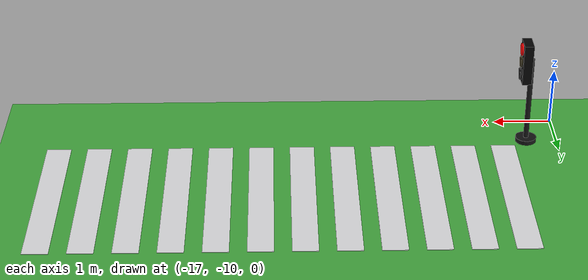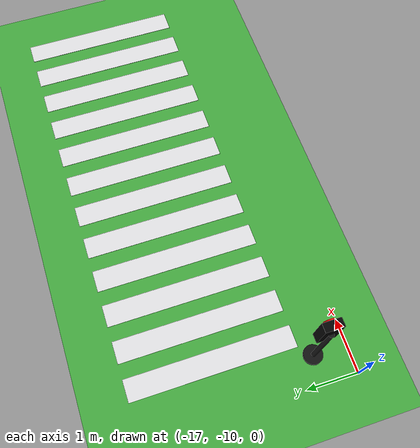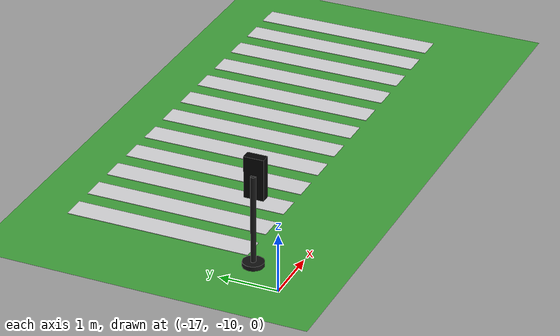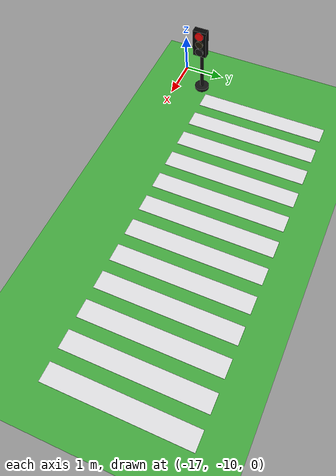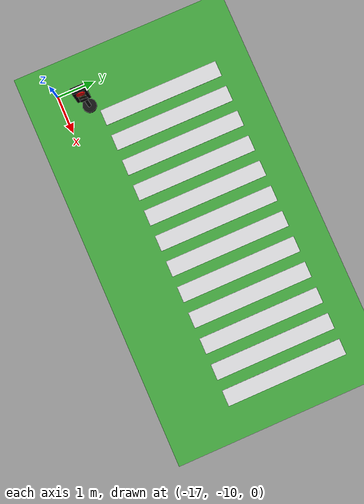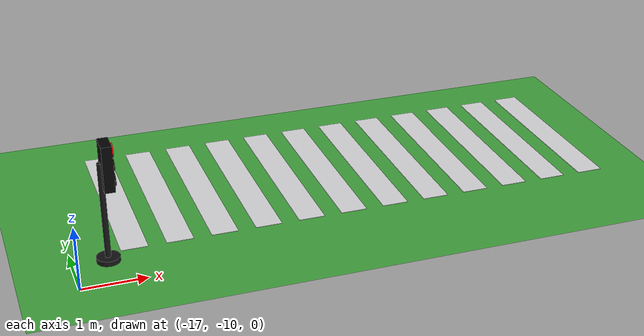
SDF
<sdf version="1.10">
 <world name="city_second">
  <model name="ground_plane">
   <static>true</static>
   <link name="link">
    <collision name="collision">
     <geometry><plane><normal>0 0 1</normal><size>300 300</size></plane></geometry>
    </collision>
    <visual name="visual">
     <geometry><plane><normal>0 0 1</normal><size>300 300</size></plane></geometry>
     <material>
      <ambient>0.280000001 0.689999998 0.25999999 1</ambient>
      <diffuse>0.280000001 0.689999998 0.25999999 1</diffuse>
      <specular>0.0299999993 0.0299999993 0.0299999993 1</specular>
     </material>
    </visual>
    <inertial>
     <mass>1</mass>
     <inertia><ixx>1</ixx><ixy>0</ixy><ixz>0</ixz><iyy>1</iyy><iyz>0</iyz><izz>1</izz></inertia>
    </inertial>
   </link>
  </model>
  <model name="crosswalk_h_1_1_south_7_4">
   <static>true</static>
   <pose>-12.188700000000003 -7.5394199999999998 0.017000000000000001 0 0 0</pose>
   <link name="stripe_1">
    <collision name="collision">
     <geometry><box><size>0.41999999999999998 3.2000000000000002 0.01</size></box></geometry>
    </collision>
    <visual name="visual">
     <geometry><box><size>0.41999999999999998 3.2000000000000002 0.01</size></box></geometry>
     <material>
      <ambient>0.920000017 0.920000017 0.930000007 1</ambient>
      <diffuse>0.920000017 0.920000017 0.930000007 1</diffuse>
      <specular>0.0299999993 0.0299999993 0.0299999993 1</specular>
     </material>
    </visual>
    <pose>-3.8500000000000001 0 0 0 0 0</pose>
    <inertial>
     <mass>1</mass>
     <inertia><ixx>1</ixx><ixy>0</ixy><ixz>0</ixz><iyy>1</iyy><iyz>0</iyz><izz>1</izz></inertia>
    </inertial>
   </link>
   <link name="stripe_2">
    <collision name="collision">
     <geometry><box><size>0.41999999999999998 3.2000000000000002 0.01</size></box></geometry>
    </collision>
    <visual name="visual">
     <geometry><box><size>0.41999999999999998 3.2000000000000002 0.01</size></box></geometry>
     <material>
      <ambient>0.920000017 0.920000017 0.930000007 1</ambient>
      <diffuse>0.920000017 0.920000017 0.930000007 1</diffuse>
      <specular>0.0299999993 0.0299999993 0.0299999993 1</specular>
     </material>
    </visual>
    <pose>-3.1499999999999986 0 0 0 0 0</pose>
    <inertial>
     <mass>1</mass>
     <inertia><ixx>1</ixx><ixy>0</ixy><ixz>0</ixz><iyy>1</iyy><iyz>0</iyz><izz>1</izz></inertia>
    </inertial>
   </link>
   <link name="stripe_3">
    <collision name="collision">
     <geometry><box><size>0.41999999999999998 3.2000000000000002 0.01</size></box></geometry>
    </collision>
    <visual name="visual">
     <geometry><box><size>0.41999999999999998 3.2000000000000002 0.01</size></box></geometry>
     <material>
      <ambient>0.920000017 0.920000017 0.930000007 1</ambient>
      <diffuse>0.920000017 0.920000017 0.930000007 1</diffuse>
      <specular>0.0299999993 0.0299999993 0.0299999993 1</specular>
     </material>
    </visual>
    <pose>-2.4499999999999975 0 0 0 0 0</pose>
    <inertial>
     <mass>1</mass>
     <inertia><ixx>1</ixx><ixy>0</ixy><ixz>0</ixz><iyy>1</iyy><iyz>0</iyz><izz>1</izz></inertia>
    </inertial>
   </link>
   <link name="stripe_4">
    <collision name="collision">
     <geometry><box><size>0.41999999999999998 3.2000000000000002 0.01</size></box></geometry>
    </collision>
    <visual name="visual">
     <geometry><box><size>0.41999999999999998 3.2000000000000002 0.01</size></box></geometry>
     <material>
      <ambient>0.920000017 0.920000017 0.930000007 1</ambient>
      <diffuse>0.920000017 0.920000017 0.930000007 1</diffuse>
      <specular>0.0299999993 0.0299999993 0.0299999993 1</specular>
     </material>
    </visual>
    <pose>-1.7499999999999982 0 0 0 0 0</pose>
    <inertial>
     <mass>1</mass>
     <inertia><ixx>1</ixx><ixy>0</ixy><ixz>0</ixz><iyy>1</iyy><iyz>0</iyz><izz>1</izz></inertia>
    </inertial>
   </link>
   <link name="stripe_5">
    <collision name="collision">
     <geometry><box><size>0.41999999999999998 3.2000000000000002 0.01</size></box></geometry>
    </collision>
    <visual name="visual">
     <geometry><box><size>0.41999999999999998 3.2000000000000002 0.01</size></box></geometry>
     <material>
      <ambient>0.920000017 0.920000017 0.930000007 1</ambient>
      <diffuse>0.920000017 0.920000017 0.930000007 1</diffuse>
      <specular>0.0299999993 0.0299999993 0.0299999993 1</specular>
     </material>
    </visual>
    <pose>-1.0499999999999989 0 0 0 0 0</pose>
    <inertial>
     <mass>1</mass>
     <inertia><ixx>1</ixx><ixy>0</ixy><ixz>0</ixz><iyy>1</iyy><iyz>0</iyz><izz>1</izz></inertia>
    </inertial>
   </link>
   <link name="stripe_6">
    <collision name="collision">
     <geometry><box><size>0.41999999999999998 3.2000000000000002 0.01</size></box></geometry>
    </collision>
    <visual name="visual">
     <geometry><box><size>0.41999999999999998 3.2000000000000002 0.01</size></box></geometry>
     <material>
      <ambient>0.920000017 0.920000017 0.930000007 1</ambient>
      <diffuse>0.920000017 0.920000017 0.930000007 1</diffuse>
      <specular>0.0299999993 0.0299999993 0.0299999993 1</specular>
     </material>
    </visual>
    <pose>-0.34999999999999787 0 0 0 0 0</pose>
    <inertial>
     <mass>1</mass>
     <inertia><ixx>1</ixx><ixy>0</ixy><ixz>0</ixz><iyy>1</iyy><iyz>0</iyz><izz>1</izz></inertia>
    </inertial>
   </link>
   <link name="stripe_7">
    <collision name="collision">
     <geometry><box><size>0.41999999999999998 3.2000000000000002 0.01</size></box></geometry>
    </collision>
    <visual name="visual">
     <geometry><box><size>0.41999999999999998 3.2000000000000002 0.01</size></box></geometry>
     <material>
      <ambient>0.920000017 0.920000017 0.930000007 1</ambient>
      <diffuse>0.920000017 0.920000017 0.930000007 1</diffuse>
      <specular>0.0299999993 0.0299999993 0.0299999993 1</specular>
     </material>
    </visual>
    <pose>0.35000000000000142 0 0 0 0 0</pose>
    <inertial>
     <mass>1</mass>
     <inertia><ixx>1</ixx><ixy>0</ixy><ixz>0</ixz><iyy>1</iyy><iyz>0</iyz><izz>1</izz></inertia>
    </inertial>
   </link>
   <link name="stripe_8">
    <collision name="collision">
     <geometry><box><size>0.41999999999999998 3.2000000000000002 0.01</size></box></geometry>
    </collision>
    <visual name="visual">
     <geometry><box><size>0.41999999999999998 3.2000000000000002 0.01</size></box></geometry>
     <material>
      <ambient>0.920000017 0.920000017 0.930000007 1</ambient>
      <diffuse>0.920000017 0.920000017 0.930000007 1</diffuse>
      <specular>0.0299999993 0.0299999993 0.0299999993 1</specular>
     </material>
    </visual>
    <pose>1.0500000000000025 0 0 0 0 0</pose>
    <inertial>
     <mass>1</mass>
     <inertia><ixx>1</ixx><ixy>0</ixy><ixz>0</ixz><iyy>1</iyy><iyz>0</iyz><izz>1</izz></inertia>
    </inertial>
   </link>
   <link name="stripe_9">
    <collision name="collision">
     <geometry><box><size>0.41999999999999998 3.2000000000000002 0.01</size></box></geometry>
    </collision>
    <visual name="visual">
     <geometry><box><size>0.41999999999999998 3.2000000000000002 0.01</size></box></geometry>
     <material>
      <ambient>0.920000017 0.920000017 0.930000007 1</ambient>
      <diffuse>0.920000017 0.920000017 0.930000007 1</diffuse>
      <specular>0.0299999993 0.0299999993 0.0299999993 1</specular>
     </material>
    </visual>
    <pose>1.7500000000000018 0 0 0 0 0</pose>
    <inertial>
     <mass>1</mass>
     <inertia><ixx>1</ixx><ixy>0</ixy><ixz>0</ixz><iyy>1</iyy><iyz>0</iyz><izz>1</izz></inertia>
    </inertial>
   </link>
   <link name="stripe_10">
    <collision name="collision">
     <geometry><box><size>0.41999999999999998 3.2000000000000002 0.01</size></box></geometry>
    </collision>
    <visual name="visual">
     <geometry><box><size>0.41999999999999998 3.2000000000000002 0.01</size></box></geometry>
     <material>
      <ambient>0.920000017 0.920000017 0.930000007 1</ambient>
      <diffuse>0.920000017 0.920000017 0.930000007 1</diffuse>
      <specular>0.0299999993 0.0299999993 0.0299999993 1</specular>
     </material>
    </visual>
    <pose>2.4500000000000011 0 0 0 0 0</pose>
    <inertial>
     <mass>1</mass>
     <inertia><ixx>1</ixx><ixy>0</ixy><ixz>0</ixz><iyy>1</iyy><iyz>0</iyz><izz>1</izz></inertia>
    </inertial>
   </link>
   <link name="stripe_11">
    <collision name="collision">
     <geometry><box><size>0.41999999999999998 3.2000000000000002 0.01</size></box></geometry>
    </collision>
    <visual name="visual">
     <geometry><box><size>0.41999999999999998 3.2000000000000002 0.01</size></box></geometry>
     <material>
      <ambient>0.920000017 0.920000017 0.930000007 1</ambient>
      <diffuse>0.920000017 0.920000017 0.930000007 1</diffuse>
      <specular>0.0299999993 0.0299999993 0.0299999993 1</specular>
     </material>
    </visual>
    <pose>3.1500000000000021 0 0 0 0 0</pose>
    <inertial>
     <mass>1</mass>
     <inertia><ixx>1</ixx><ixy>0</ixy><ixz>0</ixz><iyy>1</iyy><iyz>0</iyz><izz>1</izz></inertia>
    </inertial>
   </link>
   <link name="stripe_12">
    <collision name="collision">
     <geometry><box><size>0.41999999999999998 3.2000000000000002 0.01</size></box></geometry>
    </collision>
    <visual name="visual">
     <geometry><box><size>0.41999999999999998 3.2000000000000002 0.01</size></box></geometry>
     <material>
      <ambient>0.920000017 0.920000017 0.930000007 1</ambient>
      <diffuse>0.920000017 0.920000017 0.930000007 1</diffuse>
      <specular>0.0299999993 0.0299999993 0.0299999993 1</specular>
     </material>
    </visual>
    <pose>3.8500000000000014 0 0 0 0 0</pose>
    <inertial>
     <mass>1</mass>
     <inertia><ixx>1</ixx><ixy>0</ixy><ixz>0</ixz><iyy>1</iyy><iyz>0</iyz><izz>1</izz></inertia>
    </inertial>
   </link>
  </model>
  <model name="simple_traffic_light_red_east_1">
   <static>true</static>
   <pose>-16.46505069204456 -9.3365546066623484 -2.7755575615628914e-17 0 0 -1.5707999672671742</pose>
   <link name="base">
    <pose>0 0 0.040000000000000001 0 0 0</pose>
    <collision name="collision">
     <geometry>
      <cylinder><radius>0.17999999999999999</radius><length>0.080000000000000002</length></cylinder>
     </geometry>
    </collision>
    <visual name="visual">
     <geometry>
      <cylinder><radius>0.17999999999999999</radius><length>0.080000000000000002</length></cylinder>
     </geometry>
     <material>
      <ambient>0.0799999982 0.0799999982 0.0799999982 1</ambient>
      <diffuse>0.0799999982 0.0799999982 0.0799999982 1</diffuse>
      <specular>0.150000006 0.150000006 0.150000006 1</specular>
      <emissive>0 0 0 1</emissive>
     </material>
    </visual>
    <inertial>
     <mass>1</mass>
     <inertia><ixx>1</ixx><ixy>0</ixy><ixz>0</ixz><iyy>1</iyy><iyz>0</iyz><izz>1</izz></inertia>
    </inertial>
   </link>
   <link name="pole">
    <pose>2.1316282072803006e-14 -1.7763568394002505e-14 0.80000000000000004 0 0 -6.6613381477509392e-16</pose>
    <collision name="collision">
     <geometry>
      <cylinder><radius>0.044999999999999998</radius><length>1.6000000000000001</length></cylinder>
     </geometry>
    </collision>
    <visual name="visual">
     <geometry>
      <cylinder><radius>0.044999999999999998</radius><length>1.6000000000000001</length></cylinder>
     </geometry>
     <material>
      <ambient>0.0799999982 0.0799999982 0.0799999982 1</ambient>
      <diffuse>0.0799999982 0.0799999982 0.0799999982 1</diffuse>
      <specular>0.150000006 0.150000006 0.150000006 1</specular>
      <emissive>0 0 0 1</emissive>
     </material>
    </visual>
    <inertial>
     <mass>1</mass>
     <inertia><ixx>1</ixx><ixy>0</ixy><ixz>0</ixz><iyy>1</iyy><iyz>0</iyz><izz>1</izz></inertia>
    </inertial>
   </link>
   <link name="signal_box">
    <pose>3.5527136788005009e-14 0.089999999999971436 1.5500000000000003 0 0 -6.6613381477509392e-16</pose>
    <collision name="collision">
     <geometry><box><size>0.34000000000000002 0.16 0.71999999999999997</size></box></geometry>
    </collision>
    <visual name="visual">
     <geometry><box><size>0.34000000000000002 0.16 0.71999999999999997</size></box></geometry>
     <material>
      <ambient>0.0199999996 0.0199999996 0.0199999996 1</ambient>
      <diffuse>0.0199999996 0.0199999996 0.0199999996 1</diffuse>
      <specular>0.150000006 0.150000006 0.150000006 1</specular>
      <emissive>0 0 0 1</emissive>
     </material>
    </visual>
    <inertial>
     <mass>1</mass>
     <inertia><ixx>1</ixx><ixy>0</ixy><ixz>0</ixz><iyy>1</iyy><iyz>0</iyz><izz>1</izz></inertia>
    </inertial>
   </link>
   <link name="red_lens">
    <pose>1.5987211554602254e-14 0.18099999999996896 1.7800000000000002 1.5707963267999998 -2.3551386881478525e-16 4.7887819989849136e-15</pose>
    <collision name="collision">
     <geometry><cylinder><radius>0.105</radius><length>0.035000000000000003</length></cylinder></geometry>
    </collision>
    <visual name="visual">
     <geometry><cylinder><radius>0.105</radius><length>0.035000000000000003</length></cylinder></geometry>
     <material>
      <ambient>1 0.0199999996 0.0199999996 1</ambient>
      <diffuse>1 0.0199999996 0.0199999996 1</diffuse>
      <specular>0.150000006 0.150000006 0.150000006 1</specular>
      <emissive>1 0.0199999996 0.0199999996 1</emissive>
     </material>
    </visual>
    <inertial>
     <mass>1</mass>
     <inertia><ixx>1</ixx><ixy>0</ixy><ixz>0</ixz><iyy>1</iyy><iyz>0</iyz><izz>1</izz></inertia>
    </inertial>
   </link>
   <link name="yellow_lens">
    <pose>1.7763568394002505e-14 0.1819999999999915 1.5500000000000003 1.5707963267999998 -2.3551386881478525e-16 4.7887819989849136e-15</pose>
    <collision name="collision">
     <geometry>
      <cylinder><radius>0.095000000000000001</radius><length>0.035000000000000003</length></cylinder>
     </geometry>
    </collision>
    <visual name="visual">
     <geometry>
      <cylinder><radius>0.095000000000000001</radius><length>0.035000000000000003</length></cylinder>
     </geometry>
     <material>
      <ambient>0.119999997 0.100000001 0.0199999996 1</ambient>
      <diffuse>0.119999997 0.100000001 0.0199999996 1</diffuse>
      <specular>0.150000006 0.150000006 0.150000006 1</specular>
      <emissive>0 0 0 1</emissive>
     </material>
    </visual>
    <inertial>
     <mass>1</mass>
     <inertia><ixx>1</ixx><ixy>0</ixy><ixz>0</ixz><iyy>1</iyy><iyz>0</iyz><izz>1</izz></inertia>
    </inertial>
   </link>
   <link name="green_lens">
    <pose>2.6645352591003757e-14 0.18299999999999272 1.3199999999999998 1.5707963267999998 -2.3551386881478525e-16 4.7887819989849136e-15</pose>
    <collision name="collision">
     <geometry><cylinder><radius>0.105</radius><length>0.035000000000000003</length></cylinder></geometry>
    </collision>
    <visual name="visual">
     <geometry><cylinder><radius>0.105</radius><length>0.035000000000000003</length></cylinder></geometry>
     <material>
      <ambient>0.0799999982 0.0799999982 0.0799999982 1</ambient>
      <diffuse>0.0799999982 0.0799999982 0.0799999982 1</diffuse>
      <specular>0.150000006 0.150000006 0.150000006 1</specular>
      <emissive>0 0 0 1</emissive>
     </material>
    </visual>
    <inertial>
     <mass>1</mass>
     <inertia><ixx>1</ixx><ixy>0</ixy><ixz>0</ixz><iyy>1</iyy><iyz>0</iyz><izz>1</izz></inertia>
    </inertial>
   </link>
  </model>
 </world>
</sdf>
